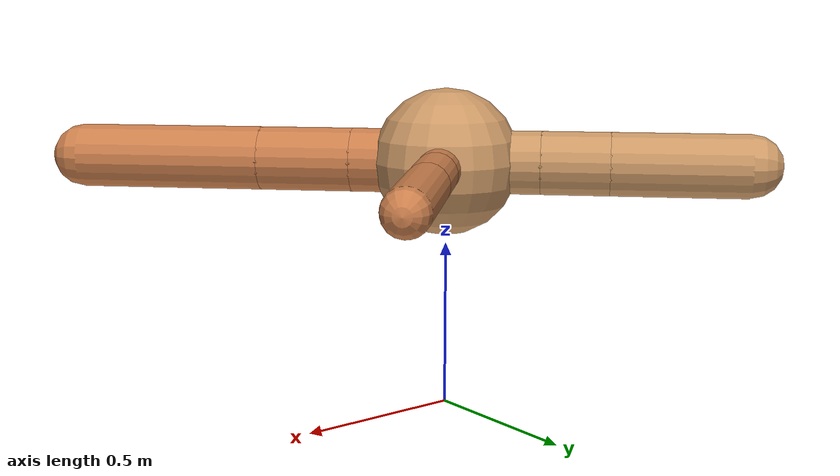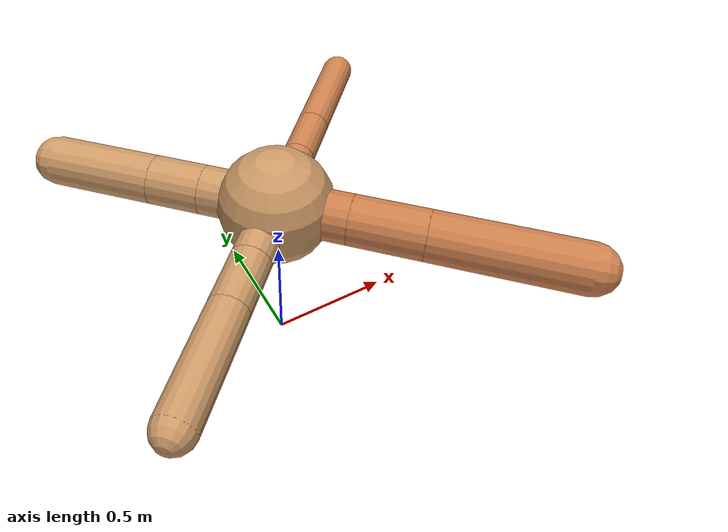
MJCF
<?xml version="1.0" ?>
<mujoco model="ant">

	<compiler angle="degree" coordinate="local" inertiafromgeom="true"/>

	<option integrator="RK4" timestep="0.01"/>

	<custom>

		<numeric data="0.0 0.0 0.55 1.0 0.0 0.0 0.0 0.0 1.0 0.0 -1.0 0.0 -1.0 0.0 1.0" name="init_qpos"/>

	</custom>

	<default>

		<joint armature="1" damping="1" limited="true"/>

		<geom conaffinity="0" condim="3" density="5.0" friction="1.5 0.1 0.1" margin="0.01" rgba="0.8 0.6 0.4 1"/>

	</default>

	<worldbody>

		<body name="torso" pos="0 0 0.75">

			<geom name="torso_geom" pos="0 0 0" size="0.21956528862035846" type="sphere"/>

			<!--joint armature="0" damping="0" limited="false" margin="0.01" name="root" pos="0 0 0" type="free"/-->

			<body name="front_left_leg" pos="0 0 0">

				<geom fromto="0 0 0 0.2 0.2 0" name="aux_1_geom" size="0.06389727589483395" type="capsule" rgba=".8 .5 .3 1"/>

				<body name="aux_1" pos="0.2 0.2 0">

					<joint axis="0 0 1" name="hip_1" pos="0.0 0.0 0.0" range="-40 40" type="hinge"/>

					<geom fromto="0 0 0 0.14516239400922534 0.14516239400922534 0" name="left_leg_geom" size="0.06389727589483395" type="capsule" rgba=".8 .5 .3 1"/>

					<body pos="0.14516239400922534 0.14516239400922534 0" name="front_left_foot">

						<joint axis="-1 1 0" name="ankle_1" pos="0.0 0.0 0.0" range="30 100" type="hinge"/>

						<geom fromto="0 0 0 0.2903247880184507 0.2903247880184507 0" name="left_ankle_geom" size="0.06389727589483395" type="capsule" rgba=".8 .5 .3 1"/>

					</body>

				</body>

			</body>

			<body name="front_right_leg" pos="0 0 0">

				<geom fromto="0 0 0 -0.2 0.2 0" name="aux_2_geom" size="0.09439839764206266" type="capsule"/>

				<body name="aux_2" pos="-0.2 0.2 0">

					<joint axis="0 0 1" name="hip_2" pos="0.0 0.0 0.0" range="-40 40" type="hinge"/>

					<geom fromto="0 0 0 -0.1430205900924669 0.1430205900924669 0" name="right_leg_geom" size="0.09439839764206266" type="capsule"/>

					<body pos="-0.1430205900924669 0.1430205900924669 0" name="front_right_foot">

						<joint axis="1 1 0" name="ankle_2" pos="0.0 0.0 0.0" range="-100 -30" type="hinge"/>

						<geom fromto="0 0 0 -0.2860411801849338 0.2860411801849338 0" name="right_ankle_geom" size="0.09439839764206266" type="capsule"/>

					</body>

				</body>

			</body>

			<body name="left_back_leg" pos="0 0 0">

				<geom fromto="0 0 0 -0.2 -0.2 0" name="aux_3_geom" size="0.07645311552627189" type="capsule"/>

				<body name="aux_3" pos="-0.2 -0.2 0">

					<joint axis="0 0 1" name="hip_3" pos="0.0 0.0 0.0" range="-40 40" type="hinge"/>

					<geom fromto="0 0 0 -0.1543222548620442 -0.1543222548620442 0" name="back_leg_geom" size="0.07645311552627189" type="capsule"/>

					<body pos="-0.1543222548620442 -0.1543222548620442 0" name="left_back_foot">

						<joint axis="-1 1 0" name="ankle_3" pos="0.0 0.0 0.0" range="-100 -30" type="hinge"/>

						<geom fromto="0 0 0 -0.3086445097240884 -0.3086445097240884 0" name="third_ankle_geom" size="0.07645311552627189" type="capsule"/>

					</body>

				</body>

			</body>

			<body name="right_back_leg" pos="0 0 0">

				<geom fromto="0 0 0 0.2 -0.2 0" name="aux_4_geom" size="0.09579056450563693" type="capsule" rgba=".8 .5 .3 1"/>

				<body name="aux_4" pos="0.2 -0.2 0">

					<joint axis="0 0 1" name="hip_4" pos="0.0 0.0 0.0" range="-40 40" type="hinge"/>

					<geom fromto="0 0 0 0.19832257536171138 -0.19832257536171138 0" name="rightback_leg_geom" size="0.09579056450563693" type="capsule" rgba=".8 .5 .3 1"/>

					<body pos="0.19832257536171138 -0.19832257536171138 0" name="right_back_foot">

						<joint axis="1 1 0" name="ankle_4" pos="0.0 0.0 0.0" range="30 100" type="hinge"/>

						<geom fromto="0 0 0 0.39664515072342277 -0.39664515072342277 0" name="fourth_ankle_geom" size="0.09579056450563693" type="capsule" rgba=".8 .5 .3 1"/>

					</body>

				</body>

			</body>

		</body>

	</worldbody>

	<actuator>

		<motor ctrllimited="true" ctrlrange="-1.0 1.0" joint="hip_4" gear="150"/>

		<motor ctrllimited="true" ctrlrange="-1.0 1.0" joint="ankle_4" gear="150"/>

		<motor ctrllimited="true" ctrlrange="-1.0 1.0" joint="hip_1" gear="150"/>

		<motor ctrllimited="true" ctrlrange="-1.0 1.0" joint="ankle_1" gear="150"/>

		<motor ctrllimited="true" ctrlrange="-1.0 1.0" joint="hip_2" gear="150"/>

		<motor ctrllimited="true" ctrlrange="-1.0 1.0" joint="ankle_2" gear="150"/>

		<motor ctrllimited="true" ctrlrange="-1.0 1.0" joint="hip_3" gear="150"/>

		<motor ctrllimited="true" ctrlrange="-1.0 1.0" joint="ankle_3" gear="150"/>

	</actuator>

</mujoco>
